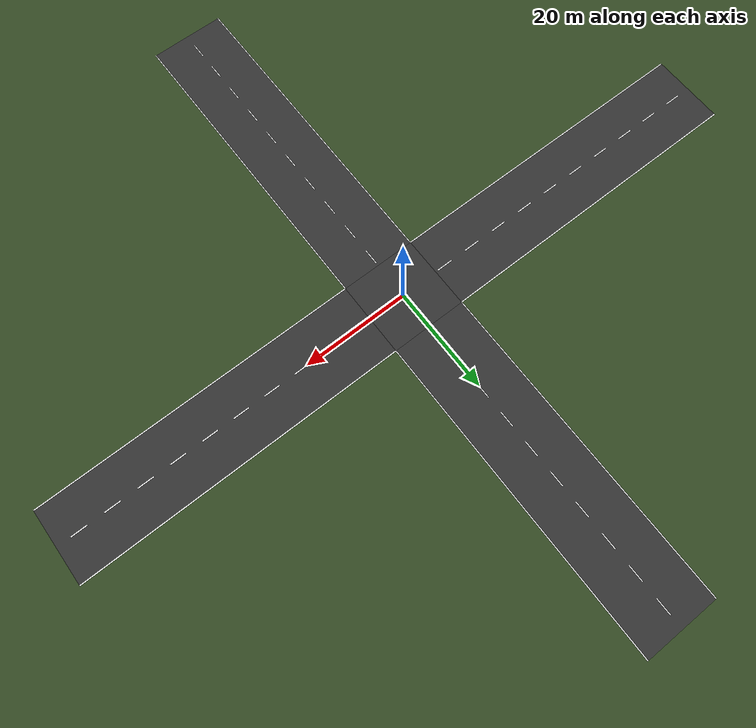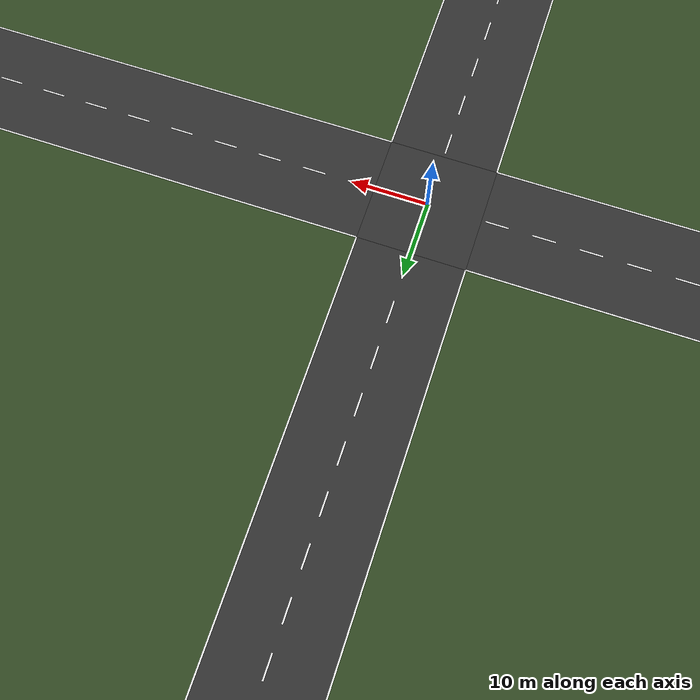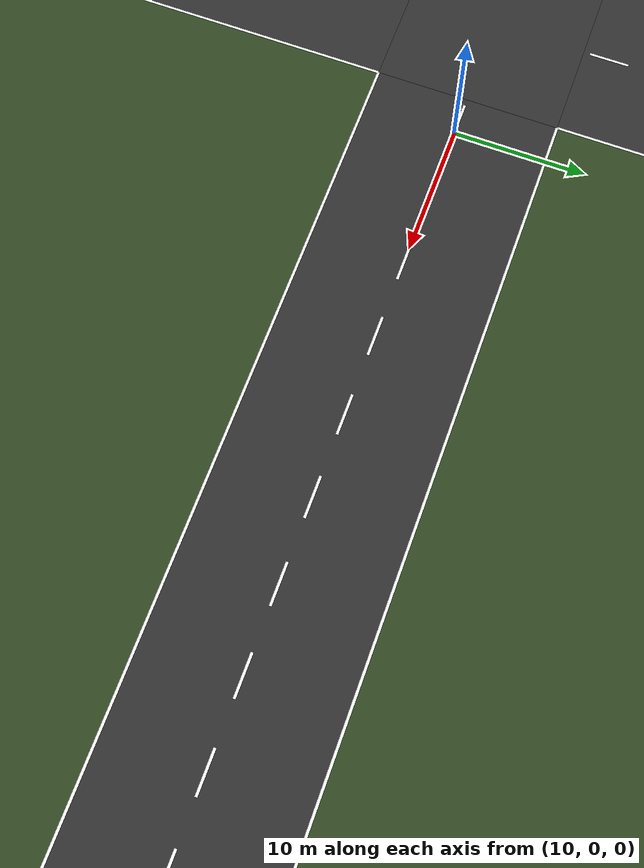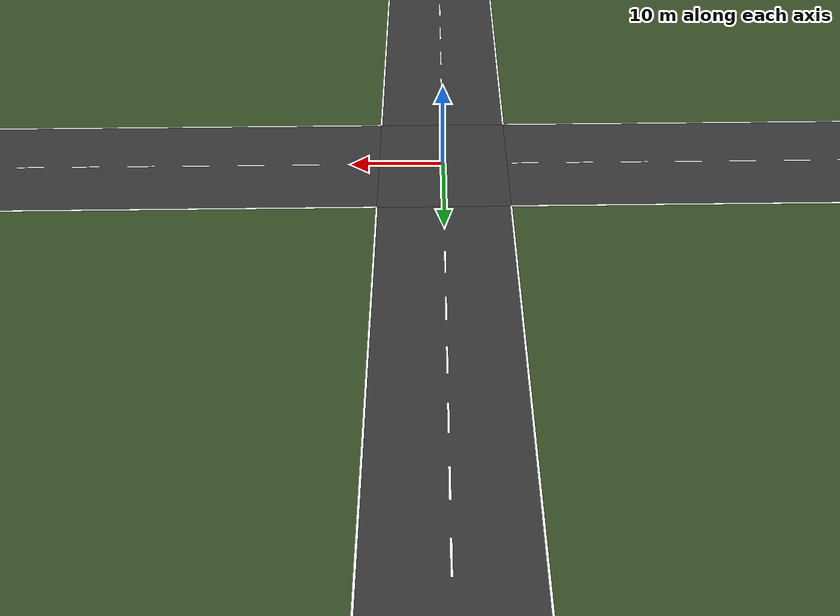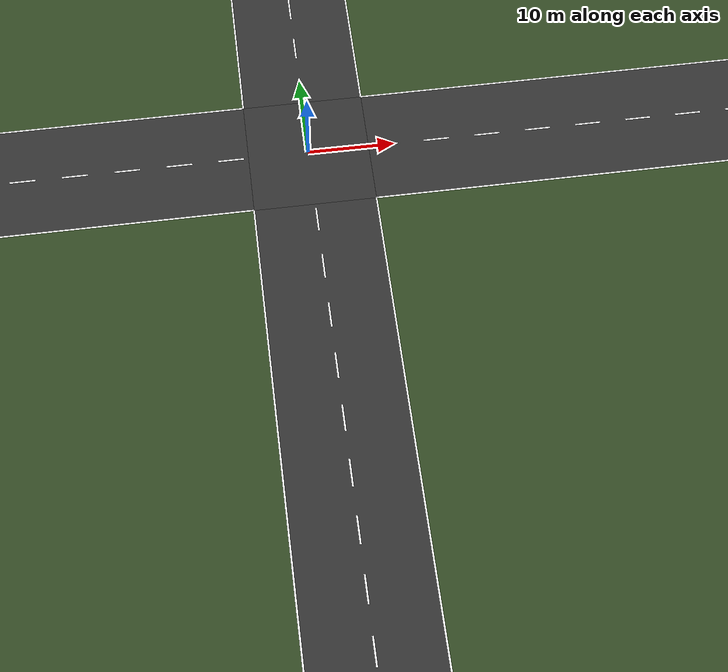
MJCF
<mujoco>

  <statistic center="0 20 0" extent="70" meansize="0.5"/>

  <visual>
    <headlight diffuse="0.6 0.6 0.6" ambient="0.3 0.3 0.3" specular="0 0 0"/>
    <rgba haze="0.15 0.25 0.35 1"/>
    <global azimuth="-20" elevation="-20" ellipsoidinertia="true"/>
  </visual>

  <asset>
    <texture type="skybox" builtin="gradient" rgb1="0.3 0.5 0.7" rgb2="0 0 0"
             width="512" height="3072"/>
    <texture type="2d" name="groundplane" builtin="checker" mark="edge"
             rgb1="0.22 0.32 0.16" rgb2="0.18 0.26 0.12"
             markrgb="0.28 0.38 0.20" width="300" height="300"/>
    <material name="groundplane" texture="groundplane" texuniform="true"
              texrepeat="25 25" reflectance="0.05"/>
    <material name="road"          rgba="0.20 0.20 0.20 1"/>
    <material name="marking_white" rgba="1.00 1.00 1.00 1"/>
  </asset>

  <worldbody>
    <light pos="0 20 40" dir="0 0 -1" directional="true"
           diffuse="0.8 0.8 0.8" ambient="0.4 0.4 0.4"/>

    <!-- Floor: contype=3 collides with Ego (type=1) and Target (type=2) -->
    <geom name="floor" size="0 0 0.05" type="plane" material="groundplane"
          contype="3" conaffinity="3"/>

    <!-- Junction centre box ±7 m -->
    <geom name="road_center" type="box" pos="0 0 0.001" size="7 7 0.001"
          material="road" contype="0" conaffinity="0"/>

    <!-- North arm: y 7→67 (extended from 47 to 67) -->
    <geom name="road_north" type="box" pos="0 37 0.001" size="7 30 0.001"
          material="road" contype="0" conaffinity="0"/>

    <!-- South arm: y -67→-7 -->
    <geom name="road_south" type="box" pos="0 -37 0.001" size="7 30 0.001"
          material="road" contype="0" conaffinity="0"/>

    <!-- East arm: x 7→67 -->
    <geom name="road_east" type="box" pos="37 0 0.001" size="30 7 0.001"
          material="road" contype="0" conaffinity="0"/>

    <!-- West arm: x -67→-7 -->
    <geom name="road_west" type="box" pos="-37 0 0.001" size="30 7 0.001"
          material="road" contype="0" conaffinity="0"/>

    <!-- Edge lines — North arm -->
    <geom name="edge_north_W" type="box" pos="-7  37 0.002" size="0.1 30 0.001"
          material="marking_white" contype="0" conaffinity="0"/>
    <geom name="edge_north_E" type="box" pos=" 7  37 0.002" size="0.1 30 0.001"
          material="marking_white" contype="0" conaffinity="0"/>
    <!-- South arm -->
    <geom name="edge_south_W" type="box" pos="-7 -37 0.002" size="0.1 30 0.001"
          material="marking_white" contype="0" conaffinity="0"/>
    <geom name="edge_south_E" type="box" pos=" 7 -37 0.002" size="0.1 30 0.001"
          material="marking_white" contype="0" conaffinity="0"/>
    <!-- East arm -->
    <geom name="edge_east_N" type="box" pos=" 37  7 0.002" size="30 0.1 0.001"
          material="marking_white" contype="0" conaffinity="0"/>
    <geom name="edge_east_S" type="box" pos=" 37 -7 0.002" size="30 0.1 0.001"
          material="marking_white" contype="0" conaffinity="0"/>
    <!-- West arm -->
    <geom name="edge_west_N" type="box" pos="-37  7 0.002" size="30 0.1 0.001"
          material="marking_white" contype="0" conaffinity="0"/>
    <geom name="edge_west_S" type="box" pos="-37 -7 0.002" size="30 0.1 0.001"
          material="marking_white" contype="0" conaffinity="0"/>

    <!-- Centre dashes — North arm (y=9 to 63, step 6) -->
    <geom name="dash_N_0" type="box" pos="0  9 0.002" size="0.1 1.5 0.001" material="marking_white" contype="0" conaffinity="0"/>
    <geom name="dash_N_1" type="box" pos="0 15 0.002" size="0.1 1.5 0.001" material="marking_white" contype="0" conaffinity="0"/>
    <geom name="dash_N_2" type="box" pos="0 21 0.002" size="0.1 1.5 0.001" material="marking_white" contype="0" conaffinity="0"/>
    <geom name="dash_N_3" type="box" pos="0 27 0.002" size="0.1 1.5 0.001" material="marking_white" contype="0" conaffinity="0"/>
    <geom name="dash_N_4" type="box" pos="0 33 0.002" size="0.1 1.5 0.001" material="marking_white" contype="0" conaffinity="0"/>
    <geom name="dash_N_5" type="box" pos="0 39 0.002" size="0.1 1.5 0.001" material="marking_white" contype="0" conaffinity="0"/>
    <geom name="dash_N_6" type="box" pos="0 45 0.002" size="0.1 1.5 0.001" material="marking_white" contype="0" conaffinity="0"/>
    <geom name="dash_N_7" type="box" pos="0 51 0.002" size="0.1 1.5 0.001" material="marking_white" contype="0" conaffinity="0"/>
    <geom name="dash_N_8" type="box" pos="0 57 0.002" size="0.1 1.5 0.001" material="marking_white" contype="0" conaffinity="0"/>
    <geom name="dash_N_9" type="box" pos="0 63 0.002" size="0.1 1.5 0.001" material="marking_white" contype="0" conaffinity="0"/>

    <!-- South arm (y=-9 to -63, step -6) -->
    <geom name="dash_S_0" type="box" pos="0  -9 0.002" size="0.1 1.5 0.001" material="marking_white" contype="0" conaffinity="0"/>
    <geom name="dash_S_1" type="box" pos="0 -15 0.002" size="0.1 1.5 0.001" material="marking_white" contype="0" conaffinity="0"/>
    <geom name="dash_S_2" type="box" pos="0 -21 0.002" size="0.1 1.5 0.001" material="marking_white" contype="0" conaffinity="0"/>
    <geom name="dash_S_3" type="box" pos="0 -27 0.002" size="0.1 1.5 0.001" material="marking_white" contype="0" conaffinity="0"/>
    <geom name="dash_S_4" type="box" pos="0 -33 0.002" size="0.1 1.5 0.001" material="marking_white" contype="0" conaffinity="0"/>
    <geom name="dash_S_5" type="box" pos="0 -39 0.002" size="0.1 1.5 0.001" material="marking_white" contype="0" conaffinity="0"/>
    <geom name="dash_S_6" type="box" pos="0 -45 0.002" size="0.1 1.5 0.001" material="marking_white" contype="0" conaffinity="0"/>
    <geom name="dash_S_7" type="box" pos="0 -51 0.002" size="0.1 1.5 0.001" material="marking_white" contype="0" conaffinity="0"/>
    <geom name="dash_S_8" type="box" pos="0 -57 0.002" size="0.1 1.5 0.001" material="marking_white" contype="0" conaffinity="0"/>
    <geom name="dash_S_9" type="box" pos="0 -63 0.002" size="0.1 1.5 0.001" material="marking_white" contype="0" conaffinity="0"/>

    <!-- East arm (x=9 to 63, step 6) -->
    <geom name="dash_E_0" type="box" pos=" 9 0 0.002" size="1.5 0.1 0.001" material="marking_white" contype="0" conaffinity="0"/>
    <geom name="dash_E_1" type="box" pos="15 0 0.002" size="1.5 0.1 0.001" material="marking_white" contype="0" conaffinity="0"/>
    <geom name="dash_E_2" type="box" pos="21 0 0.002" size="1.5 0.1 0.001" material="marking_white" contype="0" conaffinity="0"/>
    <geom name="dash_E_3" type="box" pos="27 0 0.002" size="1.5 0.1 0.001" material="marking_white" contype="0" conaffinity="0"/>
    <geom name="dash_E_4" type="box" pos="33 0 0.002" size="1.5 0.1 0.001" material="marking_white" contype="0" conaffinity="0"/>
    <geom name="dash_E_5" type="box" pos="39 0 0.002" size="1.5 0.1 0.001" material="marking_white" contype="0" conaffinity="0"/>
    <geom name="dash_E_6" type="box" pos="45 0 0.002" size="1.5 0.1 0.001" material="marking_white" contype="0" conaffinity="0"/>
    <geom name="dash_E_7" type="box" pos="51 0 0.002" size="1.5 0.1 0.001" material="marking_white" contype="0" conaffinity="0"/>
    <geom name="dash_E_8" type="box" pos="57 0 0.002" size="1.5 0.1 0.001" material="marking_white" contype="0" conaffinity="0"/>
    <geom name="dash_E_9" type="box" pos="63 0 0.002" size="1.5 0.1 0.001" material="marking_white" contype="0" conaffinity="0"/>

    <!-- West arm (x=-9 to -63, step -6) -->
    <geom name="dash_W_0" type="box" pos=" -9 0 0.002" size="1.5 0.1 0.001" material="marking_white" contype="0" conaffinity="0"/>
    <geom name="dash_W_1" type="box" pos="-15 0 0.002" size="1.5 0.1 0.001" material="marking_white" contype="0" conaffinity="0"/>
    <geom name="dash_W_2" type="box" pos="-21 0 0.002" size="1.5 0.1 0.001" material="marking_white" contype="0" conaffinity="0"/>
    <geom name="dash_W_3" type="box" pos="-27 0 0.002" size="1.5 0.1 0.001" material="marking_white" contype="0" conaffinity="0"/>
    <geom name="dash_W_4" type="box" pos="-33 0 0.002" size="1.5 0.1 0.001" material="marking_white" contype="0" conaffinity="0"/>
    <geom name="dash_W_5" type="box" pos="-39 0 0.002" size="1.5 0.1 0.001" material="marking_white" contype="0" conaffinity="0"/>
    <geom name="dash_W_6" type="box" pos="-45 0 0.002" size="1.5 0.1 0.001" material="marking_white" contype="0" conaffinity="0"/>
    <geom name="dash_W_7" type="box" pos="-51 0 0.002" size="1.5 0.1 0.001" material="marking_white" contype="0" conaffinity="0"/>
    <geom name="dash_W_8" type="box" pos="-57 0 0.002" size="1.5 0.1 0.001" material="marking_white" contype="0" conaffinity="0"/>
    <geom name="dash_W_9" type="box" pos="-63 0 0.002" size="1.5 0.1 0.001" material="marking_white" contype="0" conaffinity="0"/>

    <!-- Ego: south arm northbound lane, heading north, starts y=-20 -->
    <frame name="spawn_ego"    pos=" 1.75 -20 0" euler="0 0  90"/>

    <!-- Target: north arm southbound lane, heading south, starts y=+63 -->
    <frame name="spawn_target" pos="-1.75  63 0" euler="0 0 -90"/>

  </worldbody>

</mujoco>
